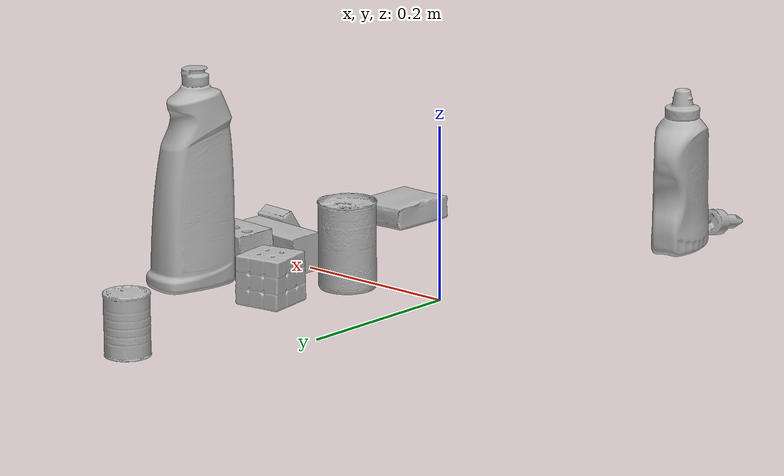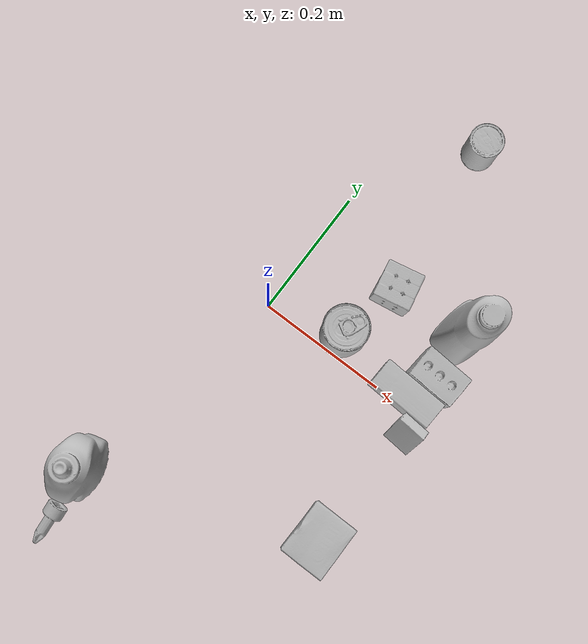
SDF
<sdf version="1.4">
  <world name="default">
    <light name="light1" type="point">
      <pose>0 0 1 0 0 0</pose>
      <diffuse>3 3 3 1</diffuse>
      <specular>3 3 3 1</specular>
    </light>
    <light name="light2" type="point">
      <pose>0 0.5 2 0 0 0</pose>
      <diffuse>1 1 1 1</diffuse>
      <specular>1 1 1 1</specular>
    </light>
    <light name="light3" type="point">
      <pose>0 0.5 2 0 0 0</pose>
      <diffuse>3 3 3 1</diffuse>
      <specular>3 3 3 1</specular>
    </light>
    <scene>
      <ambient>0.7 0.7 0.7</ambient>
    </scene>
    <model name="bottle1">
      <link name="link_bottle1">
        <collision name="default">
          <geometry>
            <mesh>
              <uri>model://bleach_cleanser/collision_meshes/collision.obj</uri>
              <scale>1.0 1.0 1.0</scale>
            </mesh>
          </geometry>
          <surface>
            <friction>
              <ode>
                <mu>0.5</mu>
                <mu2>0.5</mu2>
              </ode>
            </friction>
          <contact>
        <ode>
            <max_vel>0</max_vel>
            <min_depth>0.0001</min_depth>
            <kp>1e8</kp>
        </ode>
    </contact></surface>
        </collision>
        <visual name="default">
          <geometry>
            <mesh>
              <uri>model://bleach_cleanser/visual_meshes/visual.dae</uri>
              <scale>1.0 1.0 1.0</scale>
            </mesh>
          </geometry>
        </visual>
        <inertial>
          <mass>1.1050143241882324</mass>
          <pose>0.00012193183647468686 0.0037838828284293413 -0.02442161738872528 -0.07381670616137478 0.0004201160282461273 -0.006875061809122935</pose>
          <inertia>
            <ixx>0.0053782654</ixx>
            <iyy>0.005011756</iyy>
            <izz>0.00091954356</izz>
            <ixy>0</ixy>
            <ixz>0</ixz>
            <iyz>0</iyz>
          </inertia>
        </inertial>
      </link>
      <pose>0.2521267831325531 0.13893947005271912 0.12578406929969788 -0.00019862231479429732 1.7100885438164065e-05 2.9604289397553916</pose>
    </model>
    <model name="bottle2">
      <link name="link_bottle2">
        <collision name="default">
          <geometry>
            <mesh>
              <uri>model://mustard_bottle/collision_meshes/collision.obj</uri>
              <scale>1.0 1.0 1.0</scale>
            </mesh>
          </geometry>
          <surface>
            <friction>
              <ode>
                <mu>0.5</mu>
                <mu2>0.5</mu2>
              </ode>
            </friction>
          <contact>
        <ode>
            <max_vel>0</max_vel>
            <min_depth>0.0001</min_depth>
            <kp>1e8</kp>
        </ode>
    </contact></surface>
        </collision>
        <visual name="default">
          <geometry>
            <mesh>
              <uri>model://mustard_bottle/visual_meshes/visual.dae</uri>
              <scale>1.0 1.0 1.0</scale>
            </mesh>
          </geometry>
        </visual>
        <inertial>
          <mass>0.622285008430481</mass>
          <pose>0.0005032453336752951 -0.0001564739941386506 -0.0174757931381464 0.0004182326458762318 0.0009465782998157723 0.024853714910341117</pose>
          <inertia>
            <ixx>0.0017280002</ixx>
            <iyy>0.0015161741</iyy>
            <izz>0.00045541534</izz>
            <ixy>0</ixy>
            <ixz>0</ixz>
            <iyz>0</iyz>
          </inertia>
        </inertial>
      </link>
      <pose>-0.06683897972106934 -0.34876495599746704 0.09615199267864227 1.5510920413719547e-05 1.6622176540874094e-05 -2.9162573550601296</pose>
    </model>
    <model name="toy1">
      <link name="link_toy1">
        <collision name="default">
          <geometry>
            <mesh>
              <uri>model://foam_brick/collision_meshes/collision.obj</uri>
              <scale>1.0 1.0 1.0</scale>
            </mesh>
          </geometry>
          <surface>
            <friction>
              <ode>
                <mu>0.5</mu>
                <mu2>0.5</mu2>
              </ode>
            </friction>
          <contact>
        <ode>
            <max_vel>0</max_vel>
            <min_depth>0.0001</min_depth>
            <kp>1e8</kp>
        </ode>
    </contact></surface>
        </collision>
        <visual name="default">
          <geometry>
            <mesh>
              <uri>model://foam_brick/visual_meshes/visual.dae</uri>
              <scale>1.0 1.0 1.0</scale>
            </mesh>
          </geometry>
        </visual>
        <inertial>
          <mass>0.1664208173751831</mass>
          <pose>-0.00025224717683158815 0.0003458438441157341 -0.00025321010616607964 -0.2940189404221327 0.017274440573450563 -0.0007449871782747126</pose>
          <inertia>
            <ixx>7.269573e-05</ixx>
            <iyy>0.00011606247</iyy>
            <izz>0.000117537464</izz>
            <ixy>0</ixy>
            <ixz>0</ixz>
            <iyz>0</iyz>
          </inertia>
        </inertial>
      </link>
      <pose>0.25961270928382874 0.0625462457537651 0.026040775701403618 0.004354222076891571 0.0013549819530832355 3.07906317067577</pose>
    </model>
    <model name="toy2">
      <link name="link_toy2">
        <collision name="default">
          <geometry>
            <mesh>
              <uri>model://d_toy_airplane/collision_meshes/collision.obj</uri>
              <scale>1.0 1.0 1.0</scale>
            </mesh>
          </geometry>
          <surface>
            <friction>
              <ode>
                <mu>0.5</mu>
                <mu2>0.5</mu2>
              </ode>
            </friction>
          <contact>
        <ode>
            <max_vel>0</max_vel>
            <min_depth>0.0001</min_depth>
            <kp>1e8</kp>
        </ode>
    </contact></surface>
        </collision>
        <visual name="default">
          <geometry>
            <mesh>
              <uri>model://d_toy_airplane/visual_meshes/visual.dae</uri>
              <scale>1.0 1.0 1.0</scale>
            </mesh>
          </geometry>
        </visual>
        <inertial>
          <mass>0.021938346326351166</mass>
          <pose>9.410325583303347e-05 -5.8093231928069144e-05 -0.01172809861600399 0.0002669142468379238 0.0046790018194854816 0.5194488187392164</pose>
          <inertia>
            <ixx>6.5766894e-06</ixx>
            <iyy>6.581649e-06</iyy>
            <izz>1.9855454e-06</izz>
            <ixy>0</ixy>
            <ixz>0</ixz>
            <iyz>0</iyz>
          </inertia>
        </inertial>
      </link>
      <pose>-0.06135627254843712 -0.4456126093864441 0.012038400396704674 -1.8698420826750708 0.8596414010053266 2.9780075350854163</pose>
    </model>
    <model name="can1">
      <link name="link_can1">
        <collision name="default">
          <geometry>
            <mesh>
              <uri>model://tomato_soup_can/collision_meshes/collision.obj</uri>
              <scale>1.0 1.0 1.0</scale>
            </mesh>
          </geometry>
          <surface>
            <friction>
              <ode>
                <mu>0.5</mu>
                <mu2>0.5</mu2>
              </ode>
            </friction>
          <contact>
        <ode>
            <max_vel>0</max_vel>
            <min_depth>0.0001</min_depth>
            <kp>1e8</kp>
        </ode>
    </contact></surface>
        </collision>
        <visual name="default">
          <geometry>
            <mesh>
              <uri>model://tomato_soup_can/visual_meshes/visual.dae</uri>
              <scale>1.0 1.0 1.0</scale>
            </mesh>
          </geometry>
        </visual>
        <inertial>
          <mass>0.39673706889152527</mass>
          <pose>0.00012652271834667772 0.00010805520287249237 -0.0017973972717300057 0.007020066809275346 0.000422998323222239 -0.009903841103285913</pose>
          <inertia>
            <ixx>0.00043498844</ixx>
            <iyy>0.00043247454</iyy>
            <izz>0.00022545052</izz>
            <ixy>0</ixy>
            <ixz>0</ixz>
            <iyz>0</iyz>
          </inertia>
        </inertial>
      </link>
      <pose>0.11287839710712433 0.030174875631928444 0.05127401649951935 -3.3288277033731837e-07 -4.744881024675191e-07 2.3436962154729426</pose>
    </model>
    <model name="can2">
      <link name="link_can2">
        <collision name="default">
          <geometry>
            <mesh>
              <uri>model://master_chef_can/collision_meshes/collision.obj</uri>
              <scale>0.5 0.5 0.5</scale>
            </mesh>
          </geometry>
          <surface>
            <friction>
              <ode>
                <mu>0.5</mu>
                <mu2>0.5</mu2>
              </ode>
            </friction>
          <contact>
        <ode>
            <max_vel>0</max_vel>
            <min_depth>0.0001</min_depth>
            <kp>1e8</kp>
        </ode>
    </contact></surface>
        </collision>
        <visual name="default">
          <geometry>
            <mesh>
              <uri>model://master_chef_can/visual_meshes/visual.dae</uri>
              <scale>0.5 0.5 0.5</scale>
            </mesh>
          </geometry>
        </visual>
        <inertial>
          <mass>0.08835740387439728</mass>
          <pose>-4.6619654312962666e-05 1.3926853625889635e-07 -5.079947004560381e-05 -0.0017995147102642629 0.0006479189020740588 -0.6102650934471076</pose>
          <inertia>
            <ixx>5.1859814e-05</ixx>
            <iyy>5.1478128e-05</iyy>
            <izz>2.8656508e-05</izz>
            <ixy>0</ixy>
            <ixz>0</ixz>
            <iyz>0</iyz>
          </inertia>
        </inertial>
      </link>
      <pose>0.11097650229930878 0.37384864687919617 0.03530199080705643 -1.541904872555959e-06 -8.763075140745452e-07 0.15349040860115842</pose>
    </model>
    <model name="box1">
      <link name="link_box1">
        <collision name="default">
          <geometry>
            <mesh>
              <uri>model://wood_block/collision_meshes/collision.obj</uri>
              <scale>0.5 0.5 0.5</scale>
            </mesh>
          </geometry>
          <surface>
            <friction>
              <ode>
                <mu>0.5</mu>
                <mu2>0.5</mu2>
              </ode>
            </friction>
          <contact>
        <ode>
            <max_vel>0</max_vel>
            <min_depth>0.0001</min_depth>
            <kp>1e8</kp>
        </ode>
    </contact></surface>
        </collision>
        <visual name="default">
          <geometry>
            <mesh>
              <uri>model://wood_block/visual_meshes/visual.dae</uri>
              <scale>0.5 0.5 0.5</scale>
            </mesh>
          </geometry>
        </visual>
        <inertial>
          <mass>0.15377527475357056</mass>
          <pose>-2.9066577553749084e-06 -0.000285404734313488 0.00013204291462898254 -0.05220825990774677 -0.0051926953585221414 -0.0068613782788382646</pose>
          <inertia>
            <ixx>5.1443654e-05</ixx>
            <iyy>0.00016251049</iyy>
            <izz>0.00016190263</izz>
            <ixy>0</ixy>
            <ixz>0</ixz>
            <iyz>0</iyz>
          </inertia>
        </inertial>
      </link>
      <pose>0.23872731626033783 0.014858460053801537 0.022529080510139465 -0.021316831373382528 -0.0025546348939407453 -0.05082191942955182</pose>
    </model>
    <model name="box2">
      <link name="link_box2">
        <collision name="default">
          <geometry>
            <mesh>
              <uri>model://rubiks_cube/collision_meshes/collision.obj</uri>
              <scale>1.0 1.0 1.0</scale>
            </mesh>
          </geometry>
          <surface>
            <friction>
              <ode>
                <mu>0.5</mu>
                <mu2>0.5</mu2>
              </ode>
            </friction>
          <contact>
        <ode>
            <max_vel>0</max_vel>
            <min_depth>0.0001</min_depth>
            <kp>1e8</kp>
        </ode>
    </contact></surface>
        </collision>
        <visual name="default">
          <geometry>
            <mesh>
              <uri>model://rubiks_cube/visual_meshes/visual.dae</uri>
              <scale>1.0 1.0 1.0</scale>
            </mesh>
          </geometry>
        </visual>
        <inertial>
          <mass>0.2856966555118561</mass>
          <pose>2.6721041649580002e-05 5.2569666877388954e-05 -7.264316082000732e-06 -0.05467209736319516 -0.09813912050272719 -0.034455106160143086</pose>
          <inertia>
            <ixx>0.00015786657</ixx>
            <iyy>0.00015713037</iyy>
            <izz>0.00015917476</izz>
            <ixy>0</ixy>
            <ixz>0</ixz>
            <iyz>0</iyz>
          </inertia>
        </inertial>
      </link>
      <pose>0.13574156165122986 0.13119155168533325 0.028678948059678078 -3.5716458975689454e-06 -1.2671420791156126e-06 1.7572977739217133</pose>
    </model>
    <model name="box3">
      <link name="link_box3">
        <collision name="default">
          <geometry>
            <mesh>
              <uri>model://gelatin_box/collision_meshes/collision.obj</uri>
              <scale>1.0 1.0 1.0</scale>
            </mesh>
          </geometry>
          <surface>
            <friction>
              <ode>
                <mu>0.5</mu>
                <mu2>0.5</mu2>
              </ode>
            </friction>
          <contact>
        <ode>
            <max_vel>0</max_vel>
            <min_depth>0.0001</min_depth>
            <kp>1e8</kp>
        </ode>
    </contact></surface>
        </collision>
        <visual name="default">
          <geometry>
            <mesh>
              <uri>model://gelatin_box/visual_meshes/visual.dae</uri>
              <scale>1.0 1.0 1.0</scale>
            </mesh>
          </geometry>
        </visual>
        <inertial>
          <mass>0.24612535536289215</mass>
          <pose>0.0004319618456065655 0.00011156871914863586 -0.00036403213744051754 -0.0010503719772071295 -0.004755818223732799 0.016440561334178715</pose>
          <inertia>
            <ixx>0.00017374444</ixx>
            <iyy>0.00012410474</iyy>
            <izz>0.00026447774</izz>
            <ixy>0</ixy>
            <ixz>0</ixz>
            <iyz>0</iyz>
          </inertia>
        </inertial>
      </link>
      <pose>0.263440877199173 -0.22678808867931366 0.015168310143053532 0.005597429248545361 -0.007304484140080876 3.1260837754694593</pose>
    </model>
    <model name="box4">
      <link name="link_box4">
        <collision name="default">
          <geometry>
            <mesh>
              <uri>model://pudding_box/collision_meshes/collision.obj</uri>
              <scale>0.5 0.5 0.5</scale>
            </mesh>
          </geometry>
          <surface>
            <friction>
              <ode>
                <mu>0.5</mu>
                <mu2>0.5</mu2>
              </ode>
            </friction>
          <contact>
        <ode>
            <max_vel>0</max_vel>
            <min_depth>0.0001</min_depth>
            <kp>1e8</kp>
        </ode>
    </contact></surface>
        </collision>
        <visual name="default">
          <geometry>
            <mesh>
              <uri>model://pudding_box/visual_meshes/visual.dae</uri>
              <scale>0.5 0.5 0.5</scale>
            </mesh>
          </geometry>
        </visual>
        <inertial>
          <mass>0.025328172370791435</mass>
          <pose>0.00024474109522998333 0.00040339428232982755 -0.0002594413817860186 0.00521310085836893 -0.006603797787762854 0.020079828890944847</pose>
          <inertia>
            <ixx>7.15805e-06</ixx>
            <iyy>4.8159864e-06</iyy>
            <izz>1.0570731e-05</izz>
            <ixy>0</ixy>
            <ixz>0</ixz>
            <iyz>0</iyz>
          </inertia>
        </inertial>
      </link>
      <pose>0.2717910706996918 -0.030617166310548782 0.027721717953681946 -1.0178980123028947 0.0044999596205432596 3.0408704779222635</pose>
    </model>
  <physics type="ode">
      <max_contacts>50</max_contacts>
      <ode>
        <solver>
          <type>quick</type>
          <iters>75</iters>
        </solver>
        <constraints>
          <contact_max_correcting_vel>0</contact_max_correcting_vel>
          <contact_surface_layer>0</contact_surface_layer>
        </constraints>
      </ode>
    </physics></world>
</sdf>
